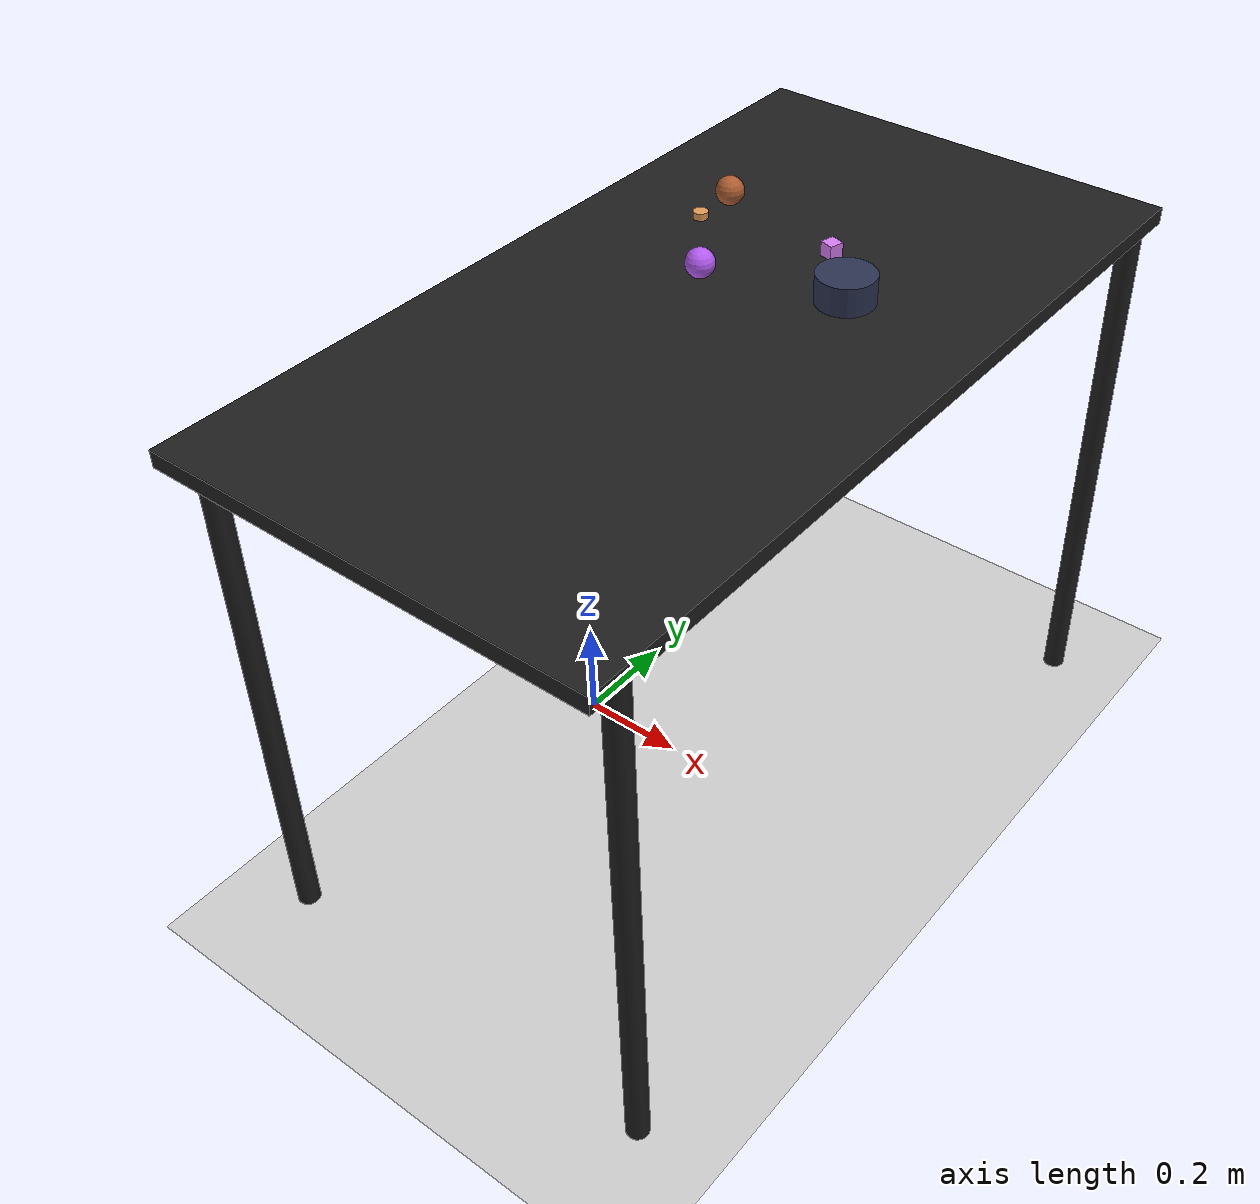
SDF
<?xml version="1.0" ?>
<sdf version="1.6">
  <world name="arm_world">
    <plugin filename="gz-sim-physics-system" name="gz::sim::systems::Physics">
      <engine>
        <filename>libgz-physics-bullet-featherstone-plugin.so</filename>
      </engine>
    </plugin>
    <plugin filename="gz-sim-user-commands-system" name="gz::sim::systems::UserCommands"/>
    <plugin filename="gz-sim-scene-broadcaster-system" name="gz::sim::systems::SceneBroadcaster"/>
    <plugin filename="gz-sim-sensors-system" name="gz::sim::systems::Sensors">
      <render_engine>ogre2</render_engine>
    </plugin>
    <gravity>0.0 0.0 -9.8</gravity>
    <scene>
      <shadows>false</shadows>
    </scene>
    <gui>
      <camera name="user_camera">
        <pose>0.75 -0.75 1.4 0 0.29 2.21</pose>
      </camera>
    </gui>
    <include>
      <uri>https://fuel.gazebosim.org/1.0/OpenRobotics/models/Sun</uri>
    </include>
    <model name="table">
      <static>true</static>
      <include>
        <uri>model://table</uri>
      </include>
      <pose>0.29 0 0 0 0 1.5708</pose>
    </model>
    <model name="ground_plane">
      <static>true</static>
      <link name="link">
        <collision name="collision">
          <geometry>
            <plane>
              <normal>0 0 1</normal>
            </plane>
          </geometry>
          <surface>
            <friction>
              <ode>
                <mu>1.0</mu>
                <mu2>1.0</mu2>
              </ode>
            </friction>
          </surface>
        </collision>
        <visual name="visual">
          <geometry>
            <plane>
              <normal>0 0 1</normal>
              <size>100 100</size>
            </plane>
          </geometry>
          <material>
            <ambient>0.8 0.8 0.8 1</ambient>
            <diffuse>0.8 0.8 0.8 1</diffuse>
            <specular>0.8 0.8 0.8 1</specular>
          </material>
        </visual>
      </link>
    </model>
    <model name="sphere_m_0">
      <pose>0.107 0.297 1.05 0 0 4.54</pose>
      <link name="sphere_m_0_link">
        <inertial>
          <mass>0.05</mass>
          <inertia>
            <ixx>2.04e-7</ixx>
            <iyy>2.04e-7</iyy>
            <izz>3.9e-8</izz>
            <ixy>0</ixy>
            <ixz>0</ixz>
            <iyz>0</iyz>
          </inertia>
        </inertial>
        <collision name="sphere_m_0_collision">
          <geometry>
            <sphere>
              <radius>0.025</radius>
            </sphere>
          </geometry>
          <surface>
            <friction>
              <ode>
                <mu>0.8</mu>
                <mu2>0.8</mu2>
                <fdir1>0 0 1</fdir1>
                <slip1>0.001</slip1>
                <slip2>0.001</slip2>
              </ode>
              <torsional>
                <coefficient>0.1</coefficient>
                <surface_radius>0.015</surface_radius>
                <use_patch_radius>true</use_patch_radius>
              </torsional>
            </friction>
            <contact>
              <ode>
                <kp>1e5</kp>
                <kd>10</kd>
                <max_vel>0.1</max_vel>
                <min_depth>0.001</min_depth>
                <soft_cfm>0.01</soft_cfm>
                <soft_erp>0.2</soft_erp>
              </ode>
            </contact>
            <bounce>
              <restitution_coefficient>0.2</restitution_coefficient>
              <threshold>0.01</threshold>
            </bounce>
          </surface>
        </collision>
        <visual name="sphere_m_0_visual">
          <geometry>
            <sphere>
              <radius>0.025</radius>
            </sphere>
          </geometry>
          <material>
            <ambient>0.67 0.36 0.19 1</ambient>
            <diffuse>0.67 0.36 0.19 1</diffuse>
          </material>
        </visual>
        <velocity_decay>
          <linear>1</linear>
          <angular>1</angular>
        </velocity_decay>
      </link>
    </model>
    <model name="sphere_m_1">
      <pose>0.216 0.073 1.05 0 0 3.86</pose>
      <link name="sphere_m_1_link">
        <inertial>
          <mass>0.05</mass>
          <inertia>
            <ixx>2.04e-7</ixx>
            <iyy>2.04e-7</iyy>
            <izz>3.9e-8</izz>
            <ixy>0</ixy>
            <ixz>0</ixz>
            <iyz>0</iyz>
          </inertia>
        </inertial>
        <collision name="sphere_m_1_collision">
          <geometry>
            <sphere>
              <radius>0.025</radius>
            </sphere>
          </geometry>
          <surface>
            <friction>
              <ode>
                <mu>0.8</mu>
                <mu2>0.8</mu2>
                <fdir1>0 0 1</fdir1>
                <slip1>0.001</slip1>
                <slip2>0.001</slip2>
              </ode>
              <torsional>
                <coefficient>0.1</coefficient>
                <surface_radius>0.015</surface_radius>
                <use_patch_radius>true</use_patch_radius>
              </torsional>
            </friction>
            <contact>
              <ode>
                <kp>1e5</kp>
                <kd>10</kd>
                <max_vel>0.1</max_vel>
                <min_depth>0.001</min_depth>
                <soft_cfm>0.01</soft_cfm>
                <soft_erp>0.2</soft_erp>
              </ode>
            </contact>
            <bounce>
              <restitution_coefficient>0.2</restitution_coefficient>
              <threshold>0.01</threshold>
            </bounce>
          </surface>
        </collision>
        <visual name="sphere_m_1_visual">
          <geometry>
            <sphere>
              <radius>0.025</radius>
            </sphere>
          </geometry>
          <material>
            <ambient>0.7 0.35 0.94 1</ambient>
            <diffuse>0.7 0.35 0.94 1</diffuse>
          </material>
        </visual>
        <velocity_decay>
          <linear>1</linear>
          <angular>1</angular>
        </velocity_decay>
      </link>
    </model>
    <model name="cube_s_2">
      <pose>0.356 0.236 1.05 0 0 4.42</pose>
      <link name="cube_s_2_link">
        <inertial>
          <mass>0.05</mass>
          <inertia>
            <ixx>2.04e-7</ixx>
            <iyy>2.04e-7</iyy>
            <izz>3.9e-8</izz>
            <ixy>0</ixy>
            <ixz>0</ixz>
            <iyz>0</iyz>
          </inertia>
        </inertial>
        <collision name="cube_s_2_collision">
          <geometry>
            <box>
              <size>0.025 0.025 0.025</size>
            </box>
          </geometry>
          <surface>
            <friction>
              <ode>
                <mu>0.8</mu>
                <mu2>0.8</mu2>
                <fdir1>0 0 1</fdir1>
                <slip1>0.001</slip1>
                <slip2>0.001</slip2>
              </ode>
              <torsional>
                <coefficient>0.1</coefficient>
                <surface_radius>0.015</surface_radius>
                <use_patch_radius>true</use_patch_radius>
              </torsional>
            </friction>
            <contact>
              <ode>
                <kp>1e5</kp>
                <kd>10</kd>
                <max_vel>0.1</max_vel>
                <min_depth>0.001</min_depth>
                <soft_cfm>0.01</soft_cfm>
                <soft_erp>0.2</soft_erp>
              </ode>
            </contact>
            <bounce>
              <restitution_coefficient>0.2</restitution_coefficient>
              <threshold>0.01</threshold>
            </bounce>
          </surface>
        </collision>
        <visual name="cube_s_2_visual">
          <geometry>
            <box>
              <size>0.025 0.025 0.025</size>
            </box>
          </geometry>
          <material>
            <ambient>0.84 0.49 0.95 1</ambient>
            <diffuse>0.84 0.49 0.95 1</diffuse>
          </material>
        </visual>
        <velocity_decay>
          <linear>1</linear>
          <angular>1</angular>
        </velocity_decay>
      </link>
    </model>
    <model name="cylinder_l_3">
      <pose>0.441 0.15 1.05 0 0 4.57</pose>
      <link name="cylinder_l_3_link">
        <inertial>
          <mass>0.05</mass>
          <inertia>
            <ixx>2.04e-7</ixx>
            <iyy>2.04e-7</iyy>
            <izz>3.9e-8</izz>
            <ixy>0</ixy>
            <ixz>0</ixz>
            <iyz>0</iyz>
          </inertia>
        </inertial>
        <collision name="cylinder_l_3_collision">
          <geometry>
            <cylinder>
              <radius>0.05</radius>
              <length>0.05</length>
            </cylinder>
          </geometry>
          <surface>
            <friction>
              <ode>
                <mu>0.8</mu>
                <mu2>0.8</mu2>
                <fdir1>0 0 1</fdir1>
                <slip1>0.001</slip1>
                <slip2>0.001</slip2>
              </ode>
              <torsional>
                <coefficient>0.1</coefficient>
                <surface_radius>0.015</surface_radius>
                <use_patch_radius>true</use_patch_radius>
              </torsional>
            </friction>
            <contact>
              <ode>
                <kp>1e5</kp>
                <kd>10</kd>
                <max_vel>0.1</max_vel>
                <min_depth>0.001</min_depth>
                <soft_cfm>0.01</soft_cfm>
                <soft_erp>0.2</soft_erp>
              </ode>
            </contact>
            <bounce>
              <restitution_coefficient>0.2</restitution_coefficient>
              <threshold>0.01</threshold>
            </bounce>
          </surface>
        </collision>
        <visual name="cylinder_l_3_visual">
          <geometry>
            <cylinder>
              <radius>0.05</radius>
              <length>0.05</length>
            </cylinder>
          </geometry>
          <material>
            <ambient>0.17 0.2 0.32 1</ambient>
            <diffuse>0.17 0.2 0.32 1</diffuse>
          </material>
        </visual>
        <velocity_decay>
          <linear>1</linear>
          <angular>1</angular>
        </velocity_decay>
      </link>
    </model>
    <model name="cylinder_s_4">
      <pose>0.119 0.2 1.05 0 0 0.55</pose>
      <link name="cylinder_s_4_link">
        <inertial>
          <mass>0.05</mass>
          <inertia>
            <ixx>2.04e-7</ixx>
            <iyy>2.04e-7</iyy>
            <izz>3.9e-8</izz>
            <ixy>0</ixy>
            <ixz>0</ixz>
            <iyz>0</iyz>
          </inertia>
        </inertial>
        <collision name="cylinder_s_4_collision">
          <geometry>
            <cylinder>
              <radius>0.0125</radius>
              <length>0.0125</length>
            </cylinder>
          </geometry>
          <surface>
            <friction>
              <ode>
                <mu>0.8</mu>
                <mu2>0.8</mu2>
                <fdir1>0 0 1</fdir1>
                <slip1>0.001</slip1>
                <slip2>0.001</slip2>
              </ode>
              <torsional>
                <coefficient>0.1</coefficient>
                <surface_radius>0.015</surface_radius>
                <use_patch_radius>true</use_patch_radius>
              </torsional>
            </friction>
            <contact>
              <ode>
                <kp>1e5</kp>
                <kd>10</kd>
                <max_vel>0.1</max_vel>
                <min_depth>0.001</min_depth>
                <soft_cfm>0.01</soft_cfm>
                <soft_erp>0.2</soft_erp>
              </ode>
            </contact>
            <bounce>
              <restitution_coefficient>0.2</restitution_coefficient>
              <threshold>0.01</threshold>
            </bounce>
          </surface>
        </collision>
        <visual name="cylinder_s_4_visual">
          <geometry>
            <cylinder>
              <radius>0.0125</radius>
              <length>0.0125</length>
            </cylinder>
          </geometry>
          <material>
            <ambient>0.89 0.61 0.33 1</ambient>
            <diffuse>0.89 0.61 0.33 1</diffuse>
          </material>
        </visual>
        <velocity_decay>
          <linear>1</linear>
          <angular>1</angular>
        </velocity_decay>
      </link>
    </model>
  </world>
</sdf>

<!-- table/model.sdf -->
<sdf version="1.5">
  <model name="table">
    <static>true</static>
    <link name="link">
      <collision name="surface">
        <pose>0 0 1.0 0 0 0</pose>
        <geometry>
          <box>
            <size>1.5 0.8 0.03</size>
          </box>
        </geometry>
        <surface>
          <friction>
            <ode>
              <mu>0.6</mu>
              <mu2>0.6</mu2>
            </ode>
          </friction>
        </surface>
      </collision>
      <visual name="surface">
        <pose>0 0 1.0 0 0 0</pose>
        <geometry>
          <box>
            <size>1.5 0.8 0.03</size>
          </box>
        </geometry>
        <material>
          <script>
            <uri>file://media/materials/scripts/gazebo.material</uri>
            <name>Gazebo/Black</name>
          </script>
        </material>
      </visual>
      <collision name="front_left_leg">
        <pose>0.68 0.38 0.5 0 0 0</pose>
        <geometry>
          <cylinder>
            <radius>0.02</radius>
            <length>1.0</length>
          </cylinder>
        </geometry>
      </collision>
      <visual name="front_left_leg">
        <pose>0.68 0.38 0.5 0 0 0</pose>
        <geometry>
          <cylinder>
            <radius>0.02</radius>
            <length>1.0</length>
          </cylinder>
        </geometry>
        <material>
          <script>
            <uri>file://media/materials/scripts/gazebo.material</uri>
            <name>Gazebo/Black</name>
          </script>
        </material>
      </visual>
      <collision name="front_right_leg">
        <pose>0.68 -0.38 0.5 0 0 0</pose>
        <geometry>
          <cylinder>
            <radius>0.02</radius>
            <length>1.0</length>
          </cylinder>
        </geometry>
      </collision>
      <visual name="front_right_leg">
        <pose>0.68 -0.38 0.5 0 0 0</pose>
        <geometry>
          <cylinder>
            <radius>0.02</radius>
            <length>1.0</length>
          </cylinder>
        </geometry>
        <material>
          <script>
            <uri>file://media/materials/scripts/gazebo.material</uri>
            <name>Gazebo/Black</name>
          </script>
        </material>
      </visual>
      <collision name="back_right_leg">
        <pose>-0.68 -0.38 0.5 0 0 0</pose>
        <geometry>
          <cylinder>
            <radius>0.02</radius>
            <length>1.0</length>
          </cylinder>
        </geometry>
      </collision>
      <visual name="back_right_leg">
        <pose>-0.68 -0.38 0.5 0 0 0</pose>
        <geometry>
          <cylinder>
            <radius>0.02</radius>
            <length>1.0</length>
          </cylinder>
        </geometry>
        <material>
          <script>
            <uri>file://media/materials/scripts/gazebo.material</uri>
            <name>Gazebo/Black</name>
          </script>
        </material>
      </visual>
      <collision name="back_left_leg">
        <pose>-0.68 0.38 0.5 0 0 0</pose>
        <geometry>
          <cylinder>
            <radius>0.02</radius>
            <length>1.0</length>
          </cylinder>
        </geometry>
      </collision>
      <visual name="back_left_leg">
        <pose>-0.68 0.38 0.5 0 0 0</pose>
        <geometry>
          <cylinder>
            <radius>0.02</radius>
            <length>1.0</length>
          </cylinder>
        </geometry>
        <material>
          <script>
            <uri>file://media/materials/scripts/gazebo.material</uri>
            <name>Gazebo/Black</name>
          </script>
        </material>
      </visual>
    </link>
  </model>
</sdf>
